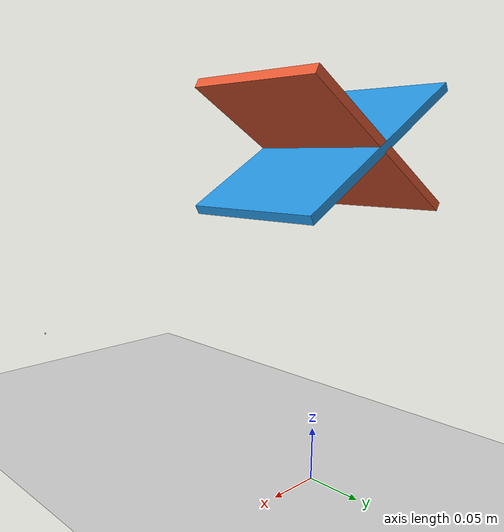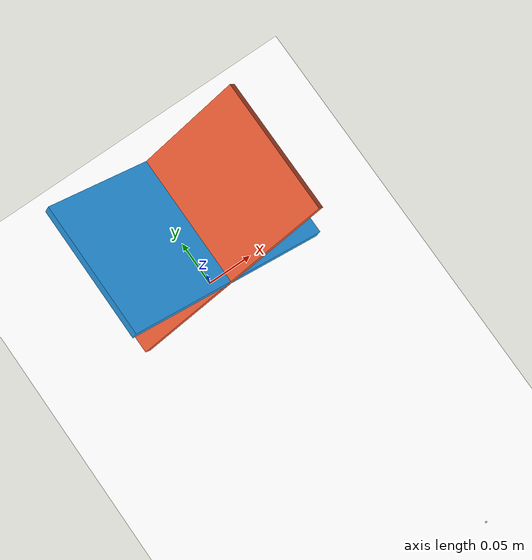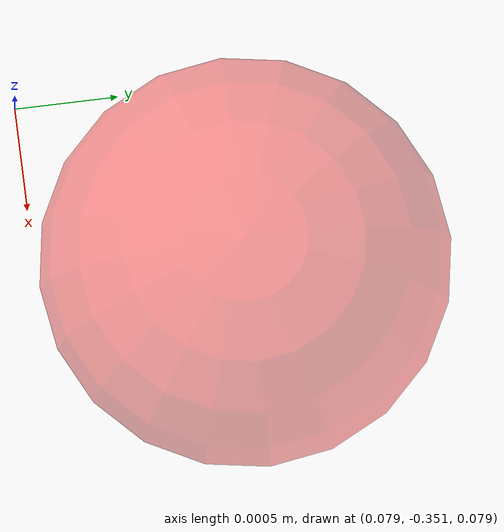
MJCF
<mujoco model="t_block_dual_scaled_0p2">
      <asset>
      <!-- Checker texture (dark gray / light gray) -->
      <texture name="tex_floor_checker" type="2d" builtin="checker"
                   width="512" height="512"
                   rgb1="0.90 0.90 0.90" rgb2="0.72 0.72 0.72"/>

      <!-- Material using that texture -->
      <material name="mat_floor_checker"
                  texture="tex_floor_checker"
                  texrepeat="20 20" texuniform="true"
                  reflectance="0.05" shininess="0.8" specular="0.1"
                  rgba="1 1 1 1"/>
      </asset>
  <compiler angle="radian"/>
  <option timestep="0.01"/>
  <default>
    <geom friction="0.5 0.005 0.0001" density="1000"/>
  </default>

  <worldbody>
    <light name="scene_light" pos="0 0 1.5" dir="0 0 -1" directional="true"/>
    <geom name="floor" type="plane" size="5 5 0.1" pos="0 0 0" material="mat_floor_checker" rgba="1 1 1 1"/>

    <body name="T_siconos" pos="0 0 0.3">
      <freejoint name="root_siconos"/>
  <geom name="V_plate_pos" type="box" size="0.10 0.06 0.004" pos="0 0 0"
        quat="0.9659258 0 0.2588190 0"
        rgba="0.15 0.60 0.90 1" contype="0" conaffinity="0"/>

  <!-- -30deg about y: quat = [cos(15°), 0, -sin(15°), 0] -->
  <geom name="V_plate_neg" type="box" size="0.10 0.06 0.004" pos="0 0 0"
        quat="0.9659258 0 -0.2588190 0"
        rgba="0.90 0.35 0.20 1" contype="0" conaffinity="0"/>

  <!-- Hidden ballast to shift COM to +x direction -->
  <!-- Increase density / move further out to make COM more eccentric -->
</body>

    <body name="T_mujoco" pos="0 0 0.3">
      <freejoint name="root_mujoco"/>

      <geom name="table_top_m" type="box"
            size="0.12 0.07 0.004"
            pos="0 0 0.148"
            rgba="0.6 0.4 0.2 0.0"/>

      <geom name="table_leg_fl_m" type="box"
            size="0.006 0.006 0.072"
            pos=" 0.108  0.058  0.072"
            rgba="0.25 0.2 0.15 0.0"/>
      <geom name="table_leg_fr_m" type="box"
            size="0.006 0.006 0.072"
            pos=" 0.108 -0.058  0.072"
            rgba="0.25 0.2 0.15 0.0"/>
      <geom name="table_leg_bl_m" type="box"
            size="0.006 0.006 0.072"
            pos="-0.108  0.058  0.072"
            rgba="0.25 0.2 0.15 0.0"/>
      <geom name="table_leg_br_m" type="box"
            size="0.006 0.006 0.072"
            pos="-0.108 -0.058  0.072"
            rgba="0.25 0.2 0.15 0.0"/>
    </body>

    <body name="target_mocap" mocap="true" pos="0.08 -0.35 0.08">

      <geom type="sphere" size="0.001" rgba="1 0 0 0.4" contype="0" conaffinity="0"/>
    </body>
  </worldbody>
</mujoco>
